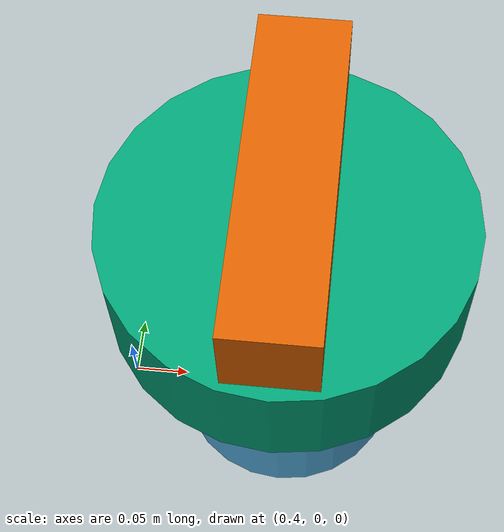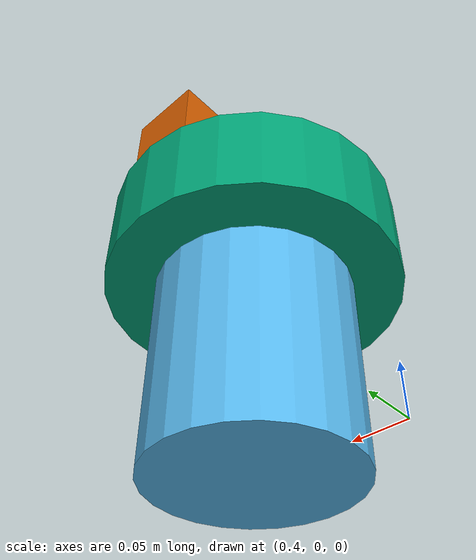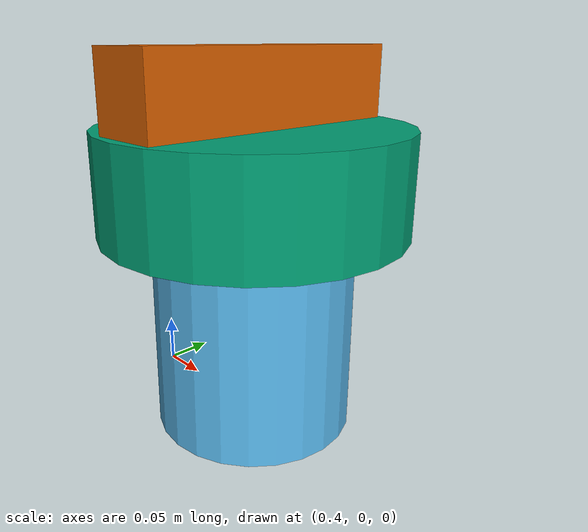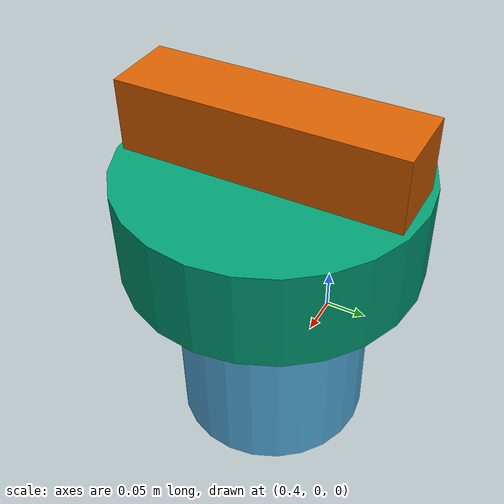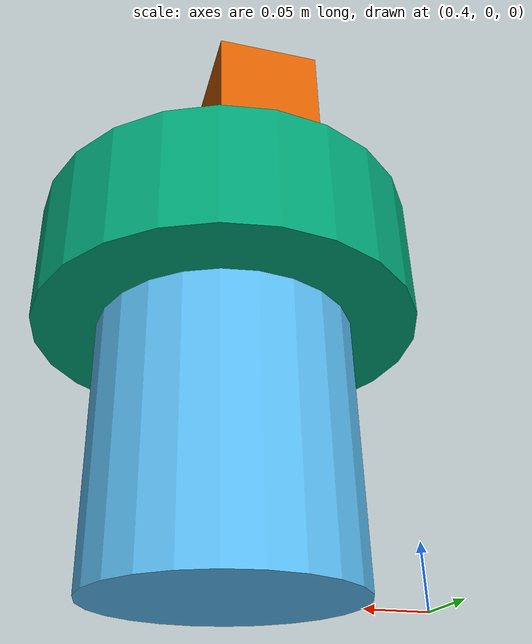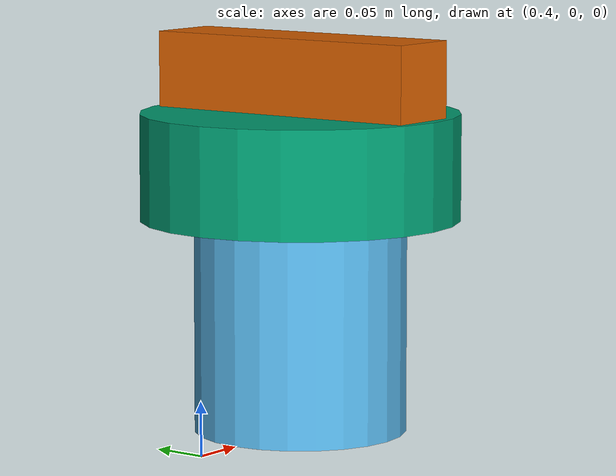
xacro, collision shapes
<?xml version="1.0"?>
<robot name="rotating_kinect" xmlns:xacro="http://ros.org/wiki/xacro">
  <xacro:include filename="$(find m_mh24)/urdf/kinect.urdf.xacro"/>
  <xacro:property name="b_h" value="0.2"/>
  <xacro:property name="p_h" value="0.1"/>
<!--rotating platform-->
  <link name="world"/>
  <joint name="world_joint" type="fixed">
    <origin xyz="0.55 0 ${b_h*0.5}" rpy="0 0 0"/>
    <parent link="world"/>
    <child link="base_link" />
  </joint>
  <link name="base_link">
    <visual>
      <origin xyz="0 0 0" rpy="0 0 0"/>
      <geometry>
        <cylinder length="${b_h}" radius="0.1"/>
      </geometry>
    </visual>
    <collision>
      <origin xyz="0.0 0.0 0.0" rpy="0 0 0"/>
  	<geometry>
  	  <cylinder length="${b_h}" radius="0.1"/>
  	</geometry>
    </collision>
    <inertial>
      <mass value="1" />
      <inertia ixx="0.00583" ixy="0.0" ixz="0.0" iyy="0.00583" iyz="0.0" izz="0.005" />
    </inertial>
  </link>
  <joint name="rotating_joint" type="revolute">
    <origin
      xyz="0 0 ${b_h*0.5+p_h*0.5}"
      rpy="0 0 0" />
    <parent link="base_link" />
    <child link="rotating_platform" />
    <axis xyz="0 0 1" />
    <limit
      lower="-3.14"
      upper="3.14"
      effort="1000"
      velocity="5" />
    <dynamics
      damping="1"
      friction="10"/>
  </joint>
  <link name="rotating_platform">
    <visual>
      <origin xyz="0 0 0" rpy="0 0 0"/>
      <geometry>
        <cylinder length="${p_h}" radius="0.15"/>
      </geometry>
    </visual>
    <collision>
      <origin xyz="0.0 0.0 0.0" rpy="0 0 0"/>
      <geometry>
  	<cylinder length="${p_h}" radius="0.15"/>
      </geometry>
    </collision>
    <inertial>
      <mass value="1" />
      <inertia ixx="0.00646" ixy="0.0" ixz="0.0" iyy="0.00646" iyz="0.0" izz="0.01125" />
    </inertial>
  </link>
  <sensor_kinect  parent="rotating_platform"/>

<!-- ros_control plugin -->
  <gazebo>
    <static>false</static>
    <plugin name="gazebo_ros_control" filename="libgazebo_ros_control.so">
      <robotNamespace>/rk</robotNamespace>
      <robotSimType>gazebo_ros_control/DefaultRobotHWSim</robotSimType>
      <legacyModeNS>true</legacyModeNS>
    </plugin>
  </gazebo>

  <transmission name="rp_transmission">
    <type>transmission_interface/SimpleTransmission</type>
    <joint name="rotating_joint">
      <hardwareInterface>hardware_interface/PositionJointInterface</hardwareInterface>
    </joint>
    <actuator name="rp_motor">
      <hardwareInterface>hardware_interface/PositioinJointInterface</hardwareInterface>
      <mechanicalReducction>1</mechanicalReducction>
    </actuator>
  </transmission>

</robot>

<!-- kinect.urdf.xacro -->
<robot name="sensor_kinect" xmlns:xacro="http://ros.org/wiki/xacro">
  <xacro:include filename="$(find m_mh24)/urdf/kinect_gazebo_plugin.urdf.xacro"/>
  <xacro:include filename="$(find m_mh24)/urdf/calibration_properties.urdf.xacro"/>
  <xacro:include filename="$(find m_mh24)/urdf/common_properties.urdf.xacro"/>

  <xacro:property name="kinect_cam_py" value="0"/>
  <!-- Parameterised in part by the values in calibration_properties.urdf.xacro -->
  <xacro:macro name="sensor_kinect" params="parent">
    <joint name="camera_rgb_joint" type="fixed">
      <origin xyz="${cam_px} ${kinect_cam_py} ${cam_pz}" rpy="${cam_or} ${cam_op} ${cam_oy}"/>
      <parent link="${parent}"/>
      <child link="camera_rgb_frame" />
    </joint>
    <link name="camera_rgb_frame"/>

    <joint name="camera_rgb_optical_joint" type="fixed">
      <origin xyz="0 0 0" rpy="${-M_PI/2} 0 ${-M_PI/2}" />
      <parent link="camera_rgb_frame" />
      <child link="camera_rgb_optical_frame" />
    </joint>
    <link name="camera_rgb_optical_frame"/>

    <joint name="camera_joint" type="fixed">
      <origin xyz="0 ${-kinect_cam_py} 0" rpy="0 0 0"/>
      <parent link="camera_rgb_frame"/>
      <child link="camera_link"/>
    </joint>
    <link name="camera_link">
      <visual>
        <origin xyz="0 0 0" rpy="0 0 ${M_PI/2}"/>
        <geometry>
          <mesh filename="package://turtlebot_description/meshes/sensors/kinect.dae"/>
        </geometry>
      </visual>
      <collision>
        <origin xyz="0.0 0.0 0.0" rpy="0 0 0"/>
          <geometry>
  	    <box size="0.07271 0.27794 0.073"/>
  	  </geometry>
      </collision>
      <inertial>
        <mass value="0.564" />
        <origin xyz="0 0 0" />
        <inertia ixx="0.003881243" ixy="0.0" ixz="0.0"
                 iyy="0.000498940" iyz="0.0"
                 izz="0.003879257" />
      </inertial>
    </link>

	<joint name="camera_depth_joint" type="fixed">
	  <origin xyz="0 ${2 * -kinect_cam_py} 0" rpy="0 0 0" />
	  <parent link="camera_rgb_frame" />
	  <child link="camera_depth_frame" />
	</joint>
	<link name="camera_depth_frame"/>

	<joint name="camera_depth_optical_joint" type="fixed">
	  <origin xyz="0 0 0" rpy="${-M_PI/2} 0 ${-M_PI/2}" />
	  <parent link="camera_depth_frame" />
	  <child link="rk/camera_depth_optical_frame"/>
	</joint>
	<link name="rk/camera_depth_optical_frame"/>

	<!-- Kinect sensor for simulation -->
	<turtlebot_sim_3dsensor/>
  </xacro:macro>
</robot>

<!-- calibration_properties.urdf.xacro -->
<robot xmlns:xacro="http://ros.org/wiki/xacro">

	<xacro:property name="cam_px" value="0" />
	<xacro:property name="cam_pz" value="0.085" />
	<xacro:property name="cam_or" value="0" />
	<xacro:property name="cam_op" value="0" />
	<xacro:property name="cam_oy" value="0" />
</robot>
